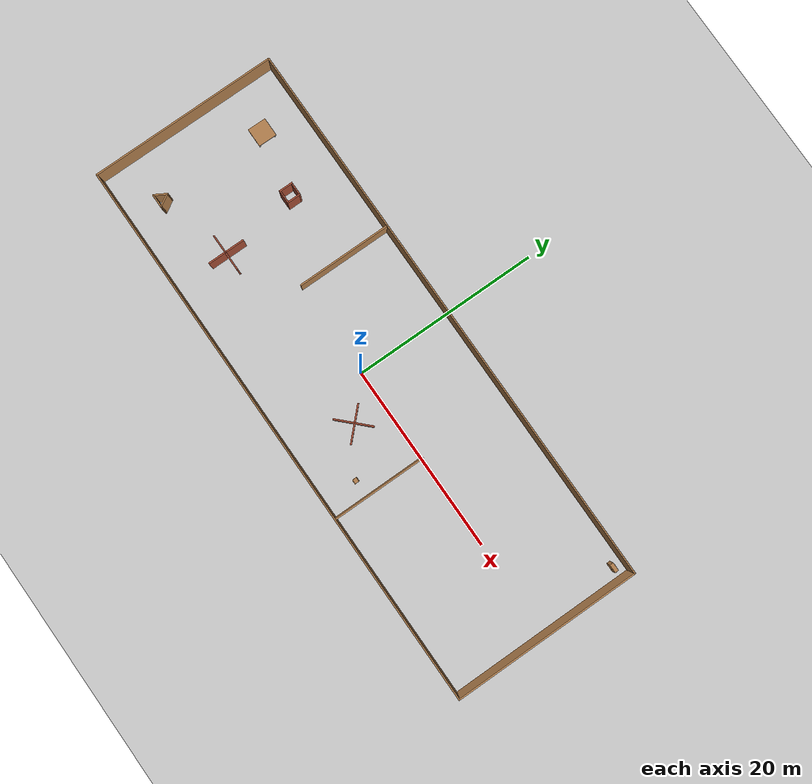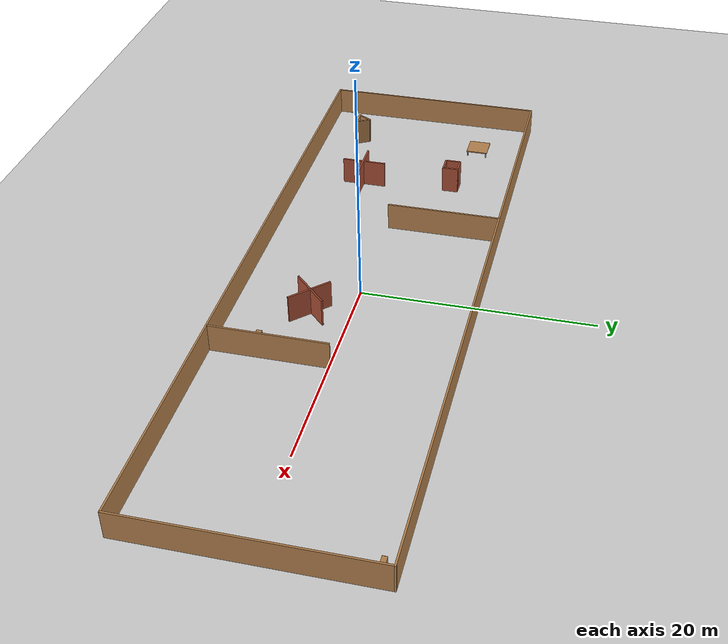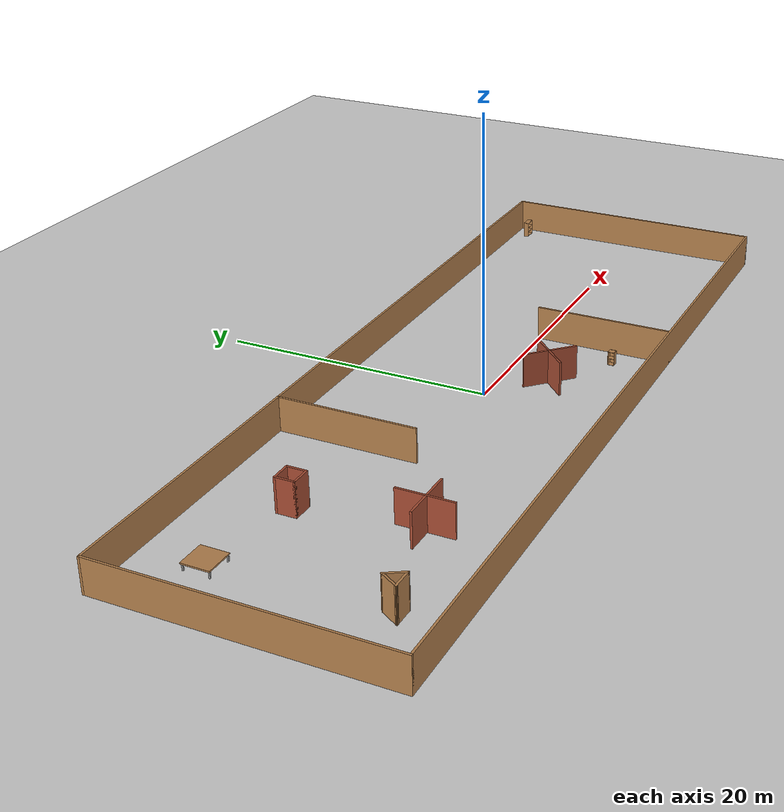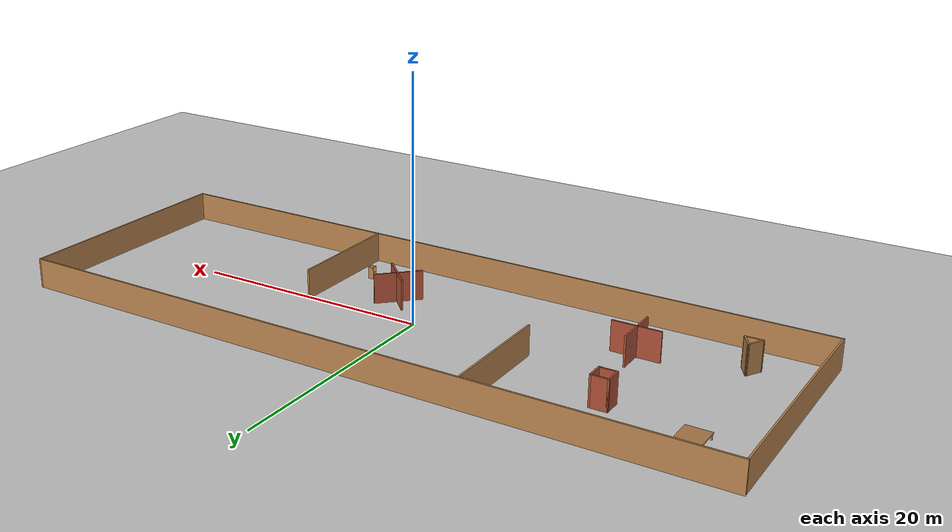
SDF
<sdf version="1.7">
 <world name="default">
  <light name="sun" type="directional">
   <pose>0 0 10 0 -0 0</pose>
   <diffuse>0.8 0.8 0.8 1</diffuse>
   <specular>0.2 0.2 0.2 1</specular>
   <attenuation>
    <range>1000</range>
    <constant>0.9</constant>
    <linear>0.01</linear>
    <quadratic>0.001</quadratic>
   </attenuation>
   <direction>-0.5 0.1 -0.9</direction>
   <spot><inner_angle>0</inner_angle><outer_angle>0</outer_angle><falloff>0</falloff></spot>
  </light>
  <model name="ground_plane">
   <static>1</static>
   <link name="link">
    <collision name="collision">
     <geometry><plane><normal>0 0 1</normal><size>100 100</size></plane></geometry>
     <surface>
      <contact><collide_bitmask>65535</collide_bitmask></contact>
      <friction><ode><mu>100</mu><mu2>50</mu2></ode></friction>
     </surface>
    </collision>
    <visual name="visual">
     <cast_shadows>0</cast_shadows>
     <geometry><plane><normal>0 0 1</normal><size>100 100</size></plane></geometry>
     <material>
      <script><uri>file://media/materials/scripts/gazebo.material</uri><name>Gazebo/Grey</name></script>
     </material>
    </visual>
   </link>
  </model>
  <gravity>0 0 -9.8</gravity>
  <magnetic_field>6e-06 2.3e-05 -4.2e-05</magnetic_field>
  <atmosphere type="adiabatic"/>
  <physics name="default_physics" default="0" type="ode">
   <max_step_size>0.001</max_step_size>
   <real_time_factor>1</real_time_factor>
   <real_time_update_rate>1000</real_time_update_rate>
  </physics>
  <scene><ambient>0.4 0.4 0.4 1</ambient><background>0.7 0.7 0.7 1</background><shadows>1</shadows></scene>
  <spherical_coordinates>
   <surface_model>EARTH_WGS84</surface_model>
   <latitude_deg>0</latitude_deg>
   <longitude_deg>0</longitude_deg>
   <elevation>0</elevation>
   <heading_deg>0</heading_deg>
  </spherical_coordinates>
  <model name="longroom">
   <pose>-0.046 0.079035 0 0 -0 0</pose>
   <link name="Wall_22">
    <collision name="Wall_22_Collision">
     <geometry><box><size>20.15 0.15 2.5</size></box></geometry>
     <pose>0 0 1.25 0 -0 0</pose>
    </collision>
    <visual name="Wall_22_Visual">
     <pose>0 0 1.25 0 -0 0</pose>
     <geometry><box><size>20.15 0.15 2.5</size></box></geometry>
     <material>
      <script><uri>file://media/materials/scripts/gazebo.material</uri><name>Gazebo/Wood</name></script>
      <ambient>1 1 1 1</ambient>
     </material>
     <meta><layer>0</layer></meta>
    </visual>
    <pose>-30 0 0 0 -0 -1.5708</pose>
   </link>
   <link name="Wall_23">
    <collision name="Wall_23_Collision">
     <geometry><box><size>60.15 0.15 2.5</size></box></geometry>
     <pose>0 0 1.25 0 -0 0</pose>
    </collision>
    <visual name="Wall_23_Visual">
     <pose>0 0 1.25 0 -0 0</pose>
     <geometry><box><size>60.15 0.15 2.5</size></box></geometry>
     <material>
      <script><uri>file://media/materials/scripts/gazebo.material</uri><name>Gazebo/Wood</name></script>
      <ambient>1 1 1 1</ambient>
     </material>
     <meta><layer>0</layer></meta>
    </visual>
    <pose>0 -10 0 0 -0 0</pose>
   </link>
   <link name="Wall_24">
    <collision name="Wall_24_Collision">
     <geometry><box><size>20.15 0.15 2.5</size></box></geometry>
     <pose>0 0 1.25 0 -0 0</pose>
    </collision>
    <visual name="Wall_24_Visual">
     <pose>0 0 1.25 0 -0 0</pose>
     <geometry><box><size>20.15 0.15 2.5</size></box></geometry>
     <material>
      <script><uri>file://media/materials/scripts/gazebo.material</uri><name>Gazebo/Wood</name></script>
      <ambient>1 1 1 1</ambient>
     </material>
     <meta><layer>0</layer></meta>
    </visual>
    <pose>30 0 0 0 -0 1.5708</pose>
   </link>
   <link name="Wall_25">
    <collision name="Wall_25_Collision">
     <geometry><box><size>60.15 0.15 2.5</size></box></geometry>
     <pose>0 0 1.25 0 -0 0</pose>
    </collision>
    <visual name="Wall_25_Visual">
     <pose>0 0 1.25 0 -0 0</pose>
     <geometry><box><size>60.15 0.15 2.5</size></box></geometry>
     <material>
      <script><uri>file://media/materials/scripts/gazebo.material</uri><name>Gazebo/Wood</name></script>
      <ambient>1 1 1 1</ambient>
     </material>
     <meta><layer>0</layer></meta>
    </visual>
    <pose>0 10 0 0 -0 3.14159</pose>
   </link>
   <link name="Wall_27">
    <collision name="Wall_27_Collision">
     <geometry><box><size>10.15 0.15 2.5</size></box></geometry>
     <pose>0 0 1.25 0 -0 0</pose>
    </collision>
    <visual name="Wall_27_Visual">
     <pose>0 0 1.25 0 -0 0</pose>
     <geometry><box><size>10.15 0.15 2.5</size></box></geometry>
     <material>
      <script><uri>file://media/materials/scripts/gazebo.material</uri><name>Gazebo/Wood</name></script>
      <ambient>1 1 1 1</ambient>
     </material>
     <meta><layer>0</layer></meta>
    </visual>
    <pose>-10 5 0 0 -0 -1.5708</pose>
   </link>
   <link name="Wall_29">
    <collision name="Wall_29_Collision">
     <geometry><box><size>10.15 0.15 2.5</size></box></geometry>
     <pose>0 0 1.25 0 -0 0</pose>
    </collision>
    <visual name="Wall_29_Visual">
     <pose>0 0 1.25 0 -0 0</pose>
     <geometry><box><size>10.15 0.15 2.5</size></box></geometry>
     <material>
      <script><uri>file://media/materials/scripts/gazebo.material</uri><name>Gazebo/Wood</name></script>
      <ambient>1 1 1 1</ambient>
     </material>
     <meta><layer>0</layer></meta>
    </visual>
    <pose>10 -5 0 0 -0 1.5708</pose>
   </link>
   <static>1</static>
  </model>
  <model name="obs_1">
   <link name="Wall_2">
    <pose>-2.50743 0.006798 0 0 -0 0.785398</pose>
    <inertial>
     <mass>1</mass>
     <inertia><ixx>1</ixx><ixy>0</ixy><ixz>0</ixz><iyy>1</iyy><iyz>0</iyz><izz>1</izz></inertia>
    </inertial>
    <visual name="Wall_2_Visual">
     <pose>0 0 1.25 0 -0 0</pose>
     <geometry><box><size>4 0.15 2.5</size></box></geometry>
     <material>
      <script><uri>file://media/materials/scripts/gazebo.material</uri><name>Gazebo/Bricks</name></script>
      <ambient>1 1 1 1</ambient>
      <shader type="pixel"><normal_map>__default__</normal_map></shader>
      <diffuse>0 0 0 1</diffuse>
      <specular>0 0 0 1</specular>
      <emissive>0 0 0 1</emissive>
     </material>
     <meta><layer>0</layer></meta>
    </visual>
    <collision name="Wall_2_Collision">
     <pose>0 0 1.25 0 -0 0</pose>
     <geometry><box><size>4 0.15 2.5</size></box></geometry>
     <surface>
      <friction>
       <ode><mu>1</mu><mu2>1</mu2><fdir1>0 0 0</fdir1><slip1>0</slip1><slip2>0</slip2></ode>
       <torsional>
        <coefficient>1</coefficient>
        <patch_radius>0</patch_radius>
        <surface_radius>0</surface_radius>
        <use_patch_radius>1</use_patch_radius>
        <ode><slip>0</slip></ode>
       </torsional>
      </friction>
      <bounce><restitution_coefficient>0</restitution_coefficient><threshold>1e+06</threshold></bounce>
      <contact>
       <collide_without_contact>0</collide_without_contact>
       <collide_without_contact_bitmask>1</collide_without_contact_bitmask>
       <collide_bitmask>1</collide_bitmask>
       <ode>
        <soft_cfm>0</soft_cfm>
        <soft_erp>0.2</soft_erp>
        <kp>1e+13</kp>
        <kd>1</kd>
        <max_vel>0.01</max_vel>
        <min_depth>0</min_depth>
       </ode>
       <bullet>
        <split_impulse>1</split_impulse>
        <split_impulse_penetration_threshold>-0.01</split_impulse_penetration_threshold>
        <soft_cfm>0</soft_cfm>
        <soft_erp>0.2</soft_erp>
        <kp>1e+13</kp>
        <kd>1</kd>
       </bullet>
      </contact>
     </surface>
    </collision>
   </link>
   <link name="Wall_4">
    <pose>-2.36671 -0.006798 0 0 0 -0.785398</pose>
    <inertial>
     <mass>1</mass>
     <inertia><ixx>1</ixx><ixy>0</ixy><ixz>0</ixz><iyy>1</iyy><iyz>0</iyz><izz>1</izz></inertia>
    </inertial>
    <visual name="Wall_4_Visual">
     <pose>0 0 1.25 0 -0 0</pose>
     <geometry><box><size>4 0.15 2.5</size></box></geometry>
     <material>
      <script><uri>file://media/materials/scripts/gazebo.material</uri><name>Gazebo/Bricks</name></script>
      <ambient>1 1 1 1</ambient>
      <shader type="pixel"><normal_map>__default__</normal_map></shader>
      <diffuse>0 0 0 1</diffuse>
      <specular>0 0 0 1</specular>
      <emissive>0 0 0 1</emissive>
     </material>
     <meta><layer>0</layer></meta>
    </visual>
    <collision name="Wall_4_Collision">
     <pose>0 0 1.25 0 -0 0</pose>
     <geometry><box><size>4 0.15 2.5</size></box></geometry>
     <surface>
      <friction>
       <ode><mu>1</mu><mu2>1</mu2><fdir1>0 0 0</fdir1><slip1>0</slip1><slip2>0</slip2></ode>
       <torsional>
        <coefficient>1</coefficient>
        <patch_radius>0</patch_radius>
        <surface_radius>0</surface_radius>
        <use_patch_radius>1</use_patch_radius>
        <ode><slip>0</slip></ode>
       </torsional>
      </friction>
      <bounce><restitution_coefficient>0</restitution_coefficient><threshold>1e+06</threshold></bounce>
      <contact>
       <collide_without_contact>0</collide_without_contact>
       <collide_without_contact_bitmask>1</collide_without_contact_bitmask>
       <collide_bitmask>1</collide_bitmask>
       <ode>
        <soft_cfm>0</soft_cfm>
        <soft_erp>0.2</soft_erp>
        <kp>1e+13</kp>
        <kd>1</kd>
        <max_vel>0.01</max_vel>
        <min_depth>0</min_depth>
       </ode>
       <bullet>
        <split_impulse>1</split_impulse>
        <split_impulse_penetration_threshold>-0.01</split_impulse_penetration_threshold>
        <soft_cfm>0</soft_cfm>
        <soft_erp>0.2</soft_erp>
        <kp>1e+13</kp>
        <kd>1</kd>
       </bullet>
      </contact>
     </surface>
    </collision>
   </link>
   <static>1</static>
   <pose>6.04383 -3.32926 0 0 -0 0</pose>
  </model>
  <model name="obs_2">
   <link name="Wall_10">
    <pose>-1.80084 -5.4433 0 0 0 -1.5708</pose>
    <inertial>
     <mass>1</mass>
     <inertia><ixx>1</ixx><ixy>0</ixy><ixz>0</ixz><iyy>1</iyy><iyz>0</iyz><izz>1</izz></inertia>
    </inertial>
    <visual name="Wall_10_Visual">
     <pose>0 0 1.25 0 -0 0</pose>
     <geometry><box><size>4 0.15 2.5</size></box></geometry>
     <material>
      <script><uri>file://media/materials/scripts/gazebo.material</uri><name>Gazebo/Bricks</name></script>
      <ambient>1 1 1 1</ambient>
      <shader type="pixel"><normal_map>__default__</normal_map></shader>
      <diffuse>1 1 1 1</diffuse>
      <specular>0.2 0.2 0.2 1</specular>
      <emissive>0 0 0 1</emissive>
     </material>
     <meta><layer>0</layer></meta>
    </visual>
    <collision name="Wall_10_Collision">
     <pose>0 0 1.25 0 -0 0</pose>
     <geometry><box><size>4 0.15 2.5</size></box></geometry>
     <surface>
      <friction>
       <ode><mu>1</mu><mu2>1</mu2><fdir1>0 0 0</fdir1><slip1>0</slip1><slip2>0</slip2></ode>
       <torsional>
        <coefficient>1</coefficient>
        <patch_radius>0</patch_radius>
        <surface_radius>0</surface_radius>
        <use_patch_radius>1</use_patch_radius>
        <ode><slip>0</slip></ode>
       </torsional>
      </friction>
      <bounce><restitution_coefficient>0</restitution_coefficient><threshold>1e+06</threshold></bounce>
      <contact>
       <collide_without_contact>0</collide_without_contact>
       <collide_without_contact_bitmask>1</collide_without_contact_bitmask>
       <collide_bitmask>1</collide_bitmask>
       <ode>
        <soft_cfm>0</soft_cfm>
        <soft_erp>0.2</soft_erp>
        <kp>1e+13</kp>
        <kd>1</kd>
        <max_vel>0.01</max_vel>
        <min_depth>0</min_depth>
       </ode>
       <bullet>
        <split_impulse>1</split_impulse>
        <split_impulse_penetration_threshold>-0.01</split_impulse_penetration_threshold>
        <soft_cfm>0</soft_cfm>
        <soft_erp>0.2</soft_erp>
        <kp>1e+13</kp>
        <kd>1</kd>
       </bullet>
      </contact>
     </surface>
    </collision>
   </link>
   <link name="Wall_7">
    <pose>-1.76072 -5.53278 0 0 -0 3.14159</pose>
    <inertial>
     <mass>1</mass>
     <inertia><ixx>1</ixx><ixy>0</ixy><ixz>0</ixz><iyy>1</iyy><iyz>0</iyz><izz>1</izz></inertia>
    </inertial>
    <visual name="Wall_7_Visual">
     <pose>0 0 1.25 0 -0 0</pose>
     <geometry><box><size>4 0.15 2.5</size></box></geometry>
     <material>
      <script><uri>file://media/materials/scripts/gazebo.material</uri><name>Gazebo/Bricks</name></script>
      <ambient>1 1 1 1</ambient>
      <shader type="pixel"><normal_map>__default__</normal_map></shader>
      <diffuse>1 1 1 1</diffuse>
      <specular>0.2 0.2 0.2 1</specular>
      <emissive>0 0 0 1</emissive>
     </material>
     <meta><layer>0</layer></meta>
    </visual>
    <collision name="Wall_7_Collision">
     <pose>0 0 1.25 0 -0 0</pose>
     <geometry><box><size>4 0.15 2.5</size></box></geometry>
     <surface>
      <friction>
       <ode><mu>1</mu><mu2>1</mu2><fdir1>0 0 0</fdir1><slip1>0</slip1><slip2>0</slip2></ode>
       <torsional>
        <coefficient>1</coefficient>
        <patch_radius>0</patch_radius>
        <surface_radius>0</surface_radius>
        <use_patch_radius>1</use_patch_radius>
        <ode><slip>0</slip></ode>
       </torsional>
      </friction>
      <bounce><restitution_coefficient>0</restitution_coefficient><threshold>1e+06</threshold></bounce>
      <contact>
       <collide_without_contact>0</collide_without_contact>
       <collide_without_contact_bitmask>1</collide_without_contact_bitmask>
       <collide_bitmask>1</collide_bitmask>
       <ode>
        <soft_cfm>0</soft_cfm>
        <soft_erp>0.2</soft_erp>
        <kp>1e+13</kp>
        <kd>1</kd>
        <max_vel>0.01</max_vel>
        <min_depth>0</min_depth>
       </ode>
       <bullet>
        <split_impulse>1</split_impulse>
        <split_impulse_penetration_threshold>-0.01</split_impulse_penetration_threshold>
        <soft_cfm>0</soft_cfm>
        <soft_erp>0.2</soft_erp>
        <kp>1e+13</kp>
        <kd>1</kd>
       </bullet>
      </contact>
     </surface>
    </collision>
   </link>
   <static>1</static>
   <pose>-14.9719 1.47084 0 0 -0 0</pose>
  </model>
  <model name="obs3">
   <pose>-16.1372 5.98987 0 0 -0 0</pose>
   <link name="Wall_0">
    <collision name="Wall_0_Collision">
     <geometry><box><size>1.5 0.15 2.5</size></box></geometry>
     <pose>0 0 1.25 0 -0 0</pose>
    </collision>
    <visual name="Wall_0_Visual">
     <pose>0 0 1.25 0 -0 0</pose>
     <geometry><box><size>1.5 0.15 2.5</size></box></geometry>
     <material>
      <script><uri>file://media/materials/scripts/gazebo.material</uri><name>Gazebo/Bricks</name></script>
      <ambient>1 1 1 1</ambient>
     </material>
     <meta><layer>0</layer></meta>
    </visual>
    <pose>-1.8625 -2.4075 0 0 -0 0</pose>
   </link>
   <link name="Wall_1">
    <collision name="Wall_1_Collision">
     <geometry><box><size>1.5 0.15 2.5</size></box></geometry>
     <pose>0 0 1.25 0 -0 0</pose>
    </collision>
    <visual name="Wall_1_Visual">
     <pose>0 0 1.25 0 -0 0</pose>
     <geometry><box><size>1.5 0.15 2.5</size></box></geometry>
     <material>
      <script><uri>file://media/materials/scripts/gazebo.material</uri><name>Gazebo/Bricks</name></script>
      <ambient>1 1 1 1</ambient>
     </material>
     <meta><layer>0</layer></meta>
    </visual>
    <pose>-1.1875 -1.7325 0 0 -0 1.5708</pose>
   </link>
   <link name="Wall_2">
    <collision name="Wall_2_Collision">
     <geometry><box><size>1.5 0.15 2.5</size></box></geometry>
     <pose>0 0 1.25 0 -0 0</pose>
    </collision>
    <visual name="Wall_2_Visual">
     <pose>0 0 1.25 0 -0 0</pose>
     <geometry><box><size>1.5 0.15 2.5</size></box></geometry>
     <material>
      <script><uri>file://media/materials/scripts/gazebo.material</uri><name>Gazebo/Bricks</name></script>
      <ambient>1 1 1 1</ambient>
     </material>
     <meta><layer>0</layer></meta>
    </visual>
    <pose>-1.8625 -1.0575 0 0 -0 3.14159</pose>
   </link>
   <link name="Wall_3">
    <collision name="Wall_3_Collision">
     <geometry><box><size>1.5 0.15 2.5</size></box></geometry>
     <pose>0 0 1.25 0 -0 0</pose>
    </collision>
    <visual name="Wall_3_Visual">
     <pose>0 0 1.25 0 -0 0</pose>
     <geometry><box><size>1.5 0.15 2.5</size></box></geometry>
     <material>
      <script><uri>file://media/materials/scripts/gazebo.material</uri><name>Gazebo/Bricks</name></script>
      <ambient>1 1 1 1</ambient>
     </material>
     <meta><layer>0</layer></meta>
    </visual>
    <pose>-2.5375 -1.7325 0 0 -0 -1.5708</pose>
   </link>
   <static>1</static>
  </model>
  <model name="obs4">
   <pose>-23.2373 -3.89491 0 0 -0 0</pose>
   <link name="Wall_5">
    <collision name="Wall_5_Collision">
     <geometry><box><size>1.5 0.15 2.5</size></box></geometry>
     <pose>0 0 1.25 0 -0 0</pose>
    </collision>
    <visual name="Wall_5_Visual">
     <pose>0 0 1.25 0 -0 0</pose>
     <geometry><box><size>1.5 0.15 2.5</size></box></geometry>
     <material>
      <script><uri>file://media/materials/scripts/gazebo.material</uri><name>Gazebo/Wood</name></script>
      <ambient>1 1 1 1</ambient>
     </material>
     <meta><layer>0</layer></meta>
    </visual>
    <pose>-1.39877 -2.70377 0 0 -0 0</pose>
   </link>
   <link name="Wall_6">
    <collision name="Wall_6_Collision">
     <geometry><box><size>1.5 0.15 2.5</size></box></geometry>
     <pose>0 0 1.25 0 -0 0</pose>
    </collision>
    <visual name="Wall_6_Visual">
     <pose>0 0 1.25 0 -0 0</pose>
     <geometry><box><size>1.5 0.15 2.5</size></box></geometry>
     <material>
      <script><uri>file://media/materials/scripts/gazebo.material</uri><name>Gazebo/Wood</name></script>
      <ambient>1 1 1 1</ambient>
     </material>
     <meta><layer>0</layer></meta>
    </visual>
    <pose>-1.06127 -2.11921 0 0 -0 2.0944</pose>
   </link>
   <link name="Wall_7">
    <collision name="Wall_7_Collision">
     <geometry><box><size>1.5 0.15 2.5</size></box></geometry>
     <pose>0 0 1.25 0 -0 0</pose>
    </collision>
    <visual name="Wall_7_Visual">
     <pose>0 0 1.25 0 -0 0</pose>
     <geometry><box><size>1.5 0.15 2.5</size></box></geometry>
     <material>
      <script><uri>file://media/materials/scripts/gazebo.material</uri><name>Gazebo/Wood</name></script>
      <ambient>1 1 1 1</ambient>
     </material>
     <meta><layer>0</layer></meta>
    </visual>
    <pose>-1.73627 -2.11921 0 0 -0 -2.0944</pose>
   </link>
   <static>1</static>
  </model>
  <model name="table_clone">
   <link name="link_0">
    <inertial>
     <mass>1</mass>
     <inertia>
      <ixx>0.166667</ixx>
      <ixy>0</ixy>
      <ixz>0</ixz>
      <iyy>0.166667</iyy>
      <iyz>0</iyz>
      <izz>0.166667</izz>
     </inertia>
    </inertial>
    <pose>-0.00175 0.015266 0.2 0 -0 0</pose>
    <visual name="visual">
     <geometry><box><size>2 2 0.1</size></box></geometry>
     <material>
      <lighting>1</lighting>
      <script><uri>file://media/materials/scripts/gazebo.material</uri><name>Gazebo/Wood</name></script>
      <shader type="pixel"><normal_map>__default__</normal_map></shader>
      <ambient>0.3 0.3 0.3 1</ambient>
      <diffuse>0.7 0.7 0.7 1</diffuse>
      <specular>0.01 0.01 0.01 1</specular>
      <emissive>0 0 0 1</emissive>
     </material>
    </visual>
    <collision name="collision">
     <geometry><box><size>2 2 0.1</size></box></geometry>
     <surface>
      <friction>
       <ode><mu>1</mu><mu2>1</mu2><fdir1>0 0 0</fdir1><slip1>0</slip1><slip2>0</slip2></ode>
       <torsional>
        <coefficient>1</coefficient>
        <patch_radius>0</patch_radius>
        <surface_radius>0</surface_radius>
        <use_patch_radius>1</use_patch_radius>
        <ode><slip>0</slip></ode>
       </torsional>
      </friction>
      <bounce><restitution_coefficient>0</restitution_coefficient><threshold>1e+06</threshold></bounce>
      <contact>
       <collide_without_contact>0</collide_without_contact>
       <collide_without_contact_bitmask>1</collide_without_contact_bitmask>
       <collide_bitmask>1</collide_bitmask>
       <ode>
        <soft_cfm>0</soft_cfm>
        <soft_erp>0.2</soft_erp>
        <kp>1e+13</kp>
        <kd>1</kd>
        <max_vel>0.01</max_vel>
        <min_depth>0</min_depth>
       </ode>
       <bullet>
        <split_impulse>1</split_impulse>
        <split_impulse_penetration_threshold>-0.01</split_impulse_penetration_threshold>
        <soft_cfm>0</soft_cfm>
        <soft_erp>0.2</soft_erp>
        <kp>1e+13</kp>
        <kd>1</kd>
       </bullet>
      </contact>
     </surface>
    </collision>
   </link>
   <link name="link_1">
    <inertial>
     <mass>1</mass>
     <inertia>
      <ixx>0.166667</ixx>
      <ixy>0</ixy>
      <ixz>0</ixz>
      <iyy>0.166667</iyy>
      <iyz>0</iyz>
      <izz>0.166667</izz>
     </inertia>
    </inertial>
    <pose>0.900437 0.896183 -0.05 0 -0 0</pose>
    <visual name="visual">
     <geometry><box><size>0.1 0.1 0.5</size></box></geometry>
     <material>
      <lighting>1</lighting>
      <script><uri>file://media/materials/scripts/gazebo.material</uri><name>Gazebo/Grey</name></script>
      <shader type="pixel"><normal_map>__default__</normal_map></shader>
      <ambient>0.3 0.3 0.3 1</ambient>
      <diffuse>0.7 0.7 0.7 1</diffuse>
      <specular>0.01 0.01 0.01 1</specular>
      <emissive>0 0 0 1</emissive>
     </material>
    </visual>
    <collision name="collision">
     <geometry><box><size>0.1 0.1 0.5</size></box></geometry>
     <surface>
      <friction>
       <ode><mu>1</mu><mu2>1</mu2><fdir1>0 0 0</fdir1><slip1>0</slip1><slip2>0</slip2></ode>
       <torsional>
        <coefficient>1</coefficient>
        <patch_radius>0</patch_radius>
        <surface_radius>0</surface_radius>
        <use_patch_radius>1</use_patch_radius>
        <ode><slip>0</slip></ode>
       </torsional>
      </friction>
      <bounce><restitution_coefficient>0</restitution_coefficient><threshold>1e+06</threshold></bounce>
      <contact>
       <collide_without_contact>0</collide_without_contact>
       <collide_without_contact_bitmask>1</collide_without_contact_bitmask>
       <collide_bitmask>1</collide_bitmask>
       <ode>
        <soft_cfm>0</soft_cfm>
        <soft_erp>0.2</soft_erp>
        <kp>1e+13</kp>
        <kd>1</kd>
        <max_vel>0.01</max_vel>
        <min_depth>0</min_depth>
       </ode>
       <bullet>
        <split_impulse>1</split_impulse>
        <split_impulse_penetration_threshold>-0.01</split_impulse_penetration_threshold>
        <soft_cfm>0</soft_cfm>
        <soft_erp>0.2</soft_erp>
        <kp>1e+13</kp>
        <kd>1</kd>
       </bullet>
      </contact>
     </surface>
    </collision>
   </link>
   <link name="link_1_clone">
    <inertial>
     <mass>1</mass>
     <inertia>
      <ixx>0.166667</ixx>
      <ixy>0</ixy>
      <ixz>0</ixz>
      <iyy>0.166667</iyy>
      <iyz>0</iyz>
      <izz>0.166667</izz>
     </inertia>
    </inertial>
    <pose>-0.899563 0.896183 -0.05 0 -0 0</pose>
    <visual name="visual">
     <geometry><box><size>0.1 0.1 0.5</size></box></geometry>
     <material>
      <lighting>1</lighting>
      <script><uri>file://media/materials/scripts/gazebo.material</uri><name>Gazebo/Grey</name></script>
      <shader type="pixel"><normal_map>__default__</normal_map></shader>
      <ambient>0.3 0.3 0.3 1</ambient>
      <diffuse>0.7 0.7 0.7 1</diffuse>
      <specular>0.01 0.01 0.01 1</specular>
      <emissive>0 0 0 1</emissive>
     </material>
    </visual>
    <collision name="collision">
     <geometry><box><size>0.1 0.1 0.5</size></box></geometry>
     <surface>
      <friction>
       <ode><mu>1</mu><mu2>1</mu2><fdir1>0 0 0</fdir1><slip1>0</slip1><slip2>0</slip2></ode>
       <torsional>
        <coefficient>1</coefficient>
        <patch_radius>0</patch_radius>
        <surface_radius>0</surface_radius>
        <use_patch_radius>1</use_patch_radius>
        <ode><slip>0</slip></ode>
       </torsional>
      </friction>
      <bounce><restitution_coefficient>0</restitution_coefficient><threshold>1e+06</threshold></bounce>
      <contact>
       <collide_without_contact>0</collide_without_contact>
       <collide_without_contact_bitmask>1</collide_without_contact_bitmask>
       <collide_bitmask>1</collide_bitmask>
       <ode>
        <soft_cfm>0</soft_cfm>
        <soft_erp>0.2</soft_erp>
        <kp>1e+13</kp>
        <kd>1</kd>
        <max_vel>0.01</max_vel>
        <min_depth>0</min_depth>
       </ode>
       <bullet>
        <split_impulse>1</split_impulse>
        <split_impulse_penetration_threshold>-0.01</split_impulse_penetration_threshold>
        <soft_cfm>0</soft_cfm>
        <soft_erp>0.2</soft_erp>
        <kp>1e+13</kp>
        <kd>1</kd>
       </bullet>
      </contact>
     </surface>
    </collision>
   </link>
   <link name="link_1_clone_clone">
    <inertial>
     <mass>1</mass>
     <inertia>
      <ixx>0.166667</ixx>
      <ixy>0</ixy>
      <ixz>0</ixz>
      <iyy>0.166667</iyy>
      <iyz>0</iyz>
      <izz>0.166667</izz>
     </inertia>
    </inertial>
    <pose>0.900437 -0.903817 -0.05 0 -0 0</pose>
    <visual name="visual">
     <geometry><box><size>0.1 0.1 0.5</size></box></geometry>
     <material>
      <lighting>1</lighting>
      <script><uri>file://media/materials/scripts/gazebo.material</uri><name>Gazebo/Grey</name></script>
      <shader type="pixel"><normal_map>__default__</normal_map></shader>
      <ambient>0.3 0.3 0.3 1</ambient>
      <diffuse>0.7 0.7 0.7 1</diffuse>
      <specular>0.01 0.01 0.01 1</specular>
      <emissive>0 0 0 1</emissive>
     </material>
    </visual>
    <collision name="collision">
     <geometry><box><size>0.1 0.1 0.5</size></box></geometry>
     <surface>
      <friction>
       <ode><mu>1</mu><mu2>1</mu2><fdir1>0 0 0</fdir1><slip1>0</slip1><slip2>0</slip2></ode>
       <torsional>
        <coefficient>1</coefficient>
        <patch_radius>0</patch_radius>
        <surface_radius>0</surface_radius>
        <use_patch_radius>1</use_patch_radius>
        <ode><slip>0</slip></ode>
       </torsional>
      </friction>
      <bounce><restitution_coefficient>0</restitution_coefficient><threshold>1e+06</threshold></bounce>
      <contact>
       <collide_without_contact>0</collide_without_contact>
       <collide_without_contact_bitmask>1</collide_without_contact_bitmask>
       <collide_bitmask>1</collide_bitmask>
       <ode>
        <soft_cfm>0</soft_cfm>
        <soft_erp>0.2</soft_erp>
        <kp>1e+13</kp>
        <kd>1</kd>
        <max_vel>0.01</max_vel>
        <min_depth>0</min_depth>
       </ode>
       <bullet>
        <split_impulse>1</split_impulse>
        <split_impulse_penetration_threshold>-0.01</split_impulse_penetration_threshold>
        <soft_cfm>0</soft_cfm>
        <soft_erp>0.2</soft_erp>
        <kp>1e+13</kp>
        <kd>1</kd>
       </bullet>
      </contact>
     </surface>
    </collision>
   </link>
   <link name="link_1_clone_clone_0">
    <inertial>
     <mass>1</mass>
     <inertia>
      <ixx>0.166667</ixx>
      <ixy>0</ixy>
      <ixz>0</ixz>
      <iyy>0.166667</iyy>
      <iyz>0</iyz>
      <izz>0.166667</izz>
     </inertia>
    </inertial>
    <pose>-0.899563 -0.903817 -0.05 0 -0 0</pose>
    <visual name="visual">
     <geometry><box><size>0.1 0.1 0.5</size></box></geometry>
     <material>
      <lighting>1</lighting>
      <script><uri>file://media/materials/scripts/gazebo.material</uri><name>Gazebo/Grey</name></script>
      <shader type="pixel"><normal_map>__default__</normal_map></shader>
      <ambient>0.3 0.3 0.3 1</ambient>
      <diffuse>0.7 0.7 0.7 1</diffuse>
      <specular>0.01 0.01 0.01 1</specular>
      <emissive>0 0 0 1</emissive>
     </material>
    </visual>
    <collision name="collision">
     <geometry><box><size>0.1 0.1 0.5</size></box></geometry>
     <surface>
      <friction>
       <ode><mu>1</mu><mu2>1</mu2><fdir1>0 0 0</fdir1><slip1>0</slip1><slip2>0</slip2></ode>
       <torsional>
        <coefficient>1</coefficient>
        <patch_radius>0</patch_radius>
        <surface_radius>0</surface_radius>
        <use_patch_radius>1</use_patch_radius>
        <ode><slip>0</slip></ode>
       </torsional>
      </friction>
      <bounce><restitution_coefficient>0</restitution_coefficient><threshold>1e+06</threshold></bounce>
      <contact>
       <collide_without_contact>0</collide_without_contact>
       <collide_without_contact_bitmask>1</collide_without_contact_bitmask>
       <collide_bitmask>1</collide_bitmask>
       <ode>
        <soft_cfm>0</soft_cfm>
        <soft_erp>0.2</soft_erp>
        <kp>1e+13</kp>
        <kd>1</kd>
        <max_vel>0.01</max_vel>
        <min_depth>0</min_depth>
       </ode>
       <bullet>
        <split_impulse>1</split_impulse>
        <split_impulse_penetration_threshold>-0.01</split_impulse_penetration_threshold>
        <soft_cfm>0</soft_cfm>
        <soft_erp>0.2</soft_erp>
        <kp>1e+13</kp>
        <kd>1</kd>
       </bullet>
      </contact>
     </surface>
    </collision>
   </link>
   <joint name="link_0_JOINT_5" type="fixed">
    <parent>link_0</parent>
    <child>link_1_clone_clone_0</child>
    <physics>
     <ode><limit><cfm>0</cfm><erp>0.2</erp></limit><suspension><cfm>0</cfm><erp>0.2</erp></suspension></ode>
    </physics>
   </joint>
   <joint name="link_0_JOINT_6" type="fixed">
    <parent>link_0</parent>
    <child>link_1_clone_clone</child>
    <physics>
     <ode><limit><cfm>0</cfm><erp>0.2</erp></limit><suspension><cfm>0</cfm><erp>0.2</erp></suspension></ode>
    </physics>
   </joint>
   <joint name="link_0_JOINT_7" type="fixed">
    <parent>link_0</parent>
    <child>link_1</child>
    <physics>
     <ode><limit><cfm>0</cfm><erp>0.2</erp></limit><suspension><cfm>0</cfm><erp>0.2</erp></suspension></ode>
    </physics>
   </joint>
   <joint name="link_0_JOINT_8" type="fixed">
    <parent>link_0</parent>
    <child>link_1_clone</child>
    <physics>
     <ode><limit><cfm>0</cfm><erp>0.2</erp></limit><suspension><cfm>0</cfm><erp>0.2</erp></suspension></ode>
    </physics>
   </joint>
   <static>0</static>
   <pose>-25.0372 5.62004 0.299998 -2e-06 -0 -0.005792</pose>
  </model>
  <model name="bookshelf">
   <static>1</static>
   <link name="link">
    <inertial><mass>1</mass></inertial>
    <collision name="back">
     <pose>0 0.005 0.6 0 -0 0</pose>
     <geometry><box><size>0.9 0.01 1.2</size></box></geometry>
    </collision>
    <visual name="visual1">
     <pose>0 0.005 0.6 0 -0 0</pose>
     <geometry><box><size>0.9 0.01 1.2</size></box></geometry>
     <material>
      <script><uri>file://media/materials/scripts/gazebo.material</uri><name>Gazebo/Wood</name></script>
     </material>
    </visual>
    <collision name="left_side">
     <pose>0.45 -0.195 0.6 0 -0 0</pose>
     <geometry><box><size>0.02 0.4 1.2</size></box></geometry>
    </collision>
    <visual name="visual2">
     <pose>0.45 -0.195 0.6 0 -0 0</pose>
     <geometry><box><size>0.02 0.4 1.2</size></box></geometry>
     <material>
      <script><uri>file://media/materials/scripts/gazebo.material</uri><name>Gazebo/Wood</name></script>
     </material>
    </visual>
    <collision name="right_side">
     <pose>-0.45 -0.195 0.6 0 -0 0</pose>
     <geometry><box><size>0.02 0.4 1.2</size></box></geometry>
    </collision>
    <visual name="visual3">
     <pose>-0.45 -0.195 0.6 0 -0 0</pose>
     <geometry><box><size>0.02 0.4 1.2</size></box></geometry>
     <material>
      <script><uri>file://media/materials/scripts/gazebo.material</uri><name>Gazebo/Wood</name></script>
     </material>
    </visual>
    <collision name="bottom">
     <pose>0 -0.195 0.03 0 -0 0</pose>
     <geometry><box><size>0.88 0.4 0.06</size></box></geometry>
    </collision>
    <visual name="visual4">
     <pose>0 -0.195 0.03 0 -0 0</pose>
     <geometry><box><size>0.88 0.4 0.06</size></box></geometry>
     <material>
      <script><uri>file://media/materials/scripts/gazebo.material</uri><name>Gazebo/Wood</name></script>
     </material>
    </visual>
    <collision name="top">
     <pose>0 -0.195 1.19 0 -0 0</pose>
     <geometry><box><size>0.88 0.4 0.02</size></box></geometry>
    </collision>
    <visual name="visual5">
     <pose>0 -0.195 1.19 0 -0 0</pose>
     <geometry><box><size>0.88 0.4 0.02</size></box></geometry>
     <material>
      <script><uri>file://media/materials/scripts/gazebo.material</uri><name>Gazebo/Wood</name></script>
     </material>
    </visual>
    <collision name="low_shelf">
     <pose>0 -0.195 0.43 0 -0 0</pose>
     <geometry><box><size>0.88 0.4 0.02</size></box></geometry>
    </collision>
    <visual name="visual6">
     <pose>0 -0.195 0.43 0 -0 0</pose>
     <geometry><box><size>0.88 0.4 0.02</size></box></geometry>
     <material>
      <script><uri>file://media/materials/scripts/gazebo.material</uri><name>Gazebo/Wood</name></script>
     </material>
    </visual>
    <collision name="high_shelf">
     <pose>0 -0.195 0.8 0 -0 0</pose>
     <geometry><box><size>0.88 0.4 0.02</size></box></geometry>
    </collision>
    <visual name="visual7">
     <pose>0 -0.195 0.8 0 -0 0</pose>
     <geometry><box><size>0.88 0.4 0.02</size></box></geometry>
     <material>
      <script><uri>file://media/materials/scripts/gazebo.material</uri><name>Gazebo/Wood</name></script>
     </material>
    </visual>
   </link>
   <pose>28.7417 9.18776 0 0 -0 0</pose>
  </model>
  <model name="cabinet_clone_3">
   <static>1</static>
   <link name="cabinet_bottom_plate">
    <inertial>
     <pose>0 0 -1 0 -0 0</pose>
     <inertia><ixx>2.05</ixx><ixy>0</ixy><ixz>0</ixz><iyy>2.05</iyy><iyz>0</iyz><izz>2.05</izz></inertia>
     <mass>25</mass>
    </inertial>
    <collision name="cabinet_bottom_plate_geom">
     <pose>0 0 0.01 0 -0 0</pose>
     <geometry><box><size>0.45 0.45 0.02</size></box></geometry>
    </collision>
    <visual name="cabinet_bottom_plate_geom_visual">
     <pose>0 0 0.01 0 -0 0</pose>
     <geometry><box><size>0.45 0.45 0.02</size></box></geometry>
     <material>
      <script><uri>file://media/materials/scripts/gazebo.material</uri><name>Gazebo/Wood</name></script>
     </material>
    </visual>
    <collision name="cabinet_bottom_plate_geom_cabinet_back_plate">
     <pose>0.235 0 0.51 0 -0 0</pose>
     <geometry><box><size>0.02 0.45 1.02</size></box></geometry>
    </collision>
    <visual name="cabinet_bottom_plate_geom_cabinet_back_plate_visual">
     <pose>0.235 0 0.51 0 -0 0</pose>
     <geometry><box><size>0.02 0.45 1.02</size></box></geometry>
     <material>
      <script><uri>file://media/materials/scripts/gazebo.material</uri><name>Gazebo/Wood</name></script>
     </material>
    </visual>
    <collision name="cabinet_bottom_plate_geom_cabinet_left_plate">
     <pose>0 0.235 0.51 0 -0 0</pose>
     <geometry><box><size>0.45 0.02 1.02</size></box></geometry>
    </collision>
    <visual name="cabinet_bottom_plate_geom_cabinet_left_plate_visual">
     <pose>0 0.235 0.51 0 -0 0</pose>
     <geometry><box><size>0.45 0.02 1.02</size></box></geometry>
     <material>
      <script><uri>file://media/materials/scripts/gazebo.material</uri><name>Gazebo/Wood</name></script>
     </material>
    </visual>
    <collision name="cabinet_bottom_plate_geom_cabinet_middle_plate">
     <pose>0 0 0.51 0 -0 0</pose>
     <geometry><box><size>0.45 0.45 0.02</size></box></geometry>
    </collision>
    <visual name="cabinet_bottom_plate_geom_cabinet_middle_plate_visual">
     <pose>0 0 0.51 0 -0 0</pose>
     <geometry><box><size>0.45 0.45 0.02</size></box></geometry>
     <material>
      <script><uri>file://media/materials/scripts/gazebo.material</uri><name>Gazebo/Wood</name></script>
     </material>
    </visual>
    <collision name="cabinet_bottom_plate_geom_cabinet_right_plate">
     <pose>0 -0.235 0.51 0 -0 0</pose>
     <geometry><box><size>0.45 0.02 1.02</size></box></geometry>
    </collision>
    <visual name="cabinet_bottom_plate_geom_cabinet_right_plate_visual">
     <pose>0 -0.235 0.51 0 -0 0</pose>
     <geometry><box><size>0.45 0.02 1.02</size></box></geometry>
     <material>
      <script><uri>file://media/materials/scripts/gazebo.material</uri><name>Gazebo/Wood</name></script>
     </material>
    </visual>
    <collision name="cabinet_bottom_plate_geom_cabinet_top_plate">
     <pose>0 0 1.01 0 -0 0</pose>
     <geometry><box><size>0.45 0.45 0.02</size></box></geometry>
    </collision>
    <visual name="cabinet_bottom_plate_geom_cabinet_top_plate_visual">
     <pose>0 0 1.01 0 -0 0</pose>
     <geometry><box><size>0.45 0.45 0.02</size></box></geometry>
     <material>
      <script><uri>file://media/materials/scripts/gazebo.material</uri><name>Gazebo/Wood</name></script>
     </material>
    </visual>
   </link>
   <pose>8.11971 -6.3042 0 0 -0 0</pose>
  </model>
 </world>
</sdf>
